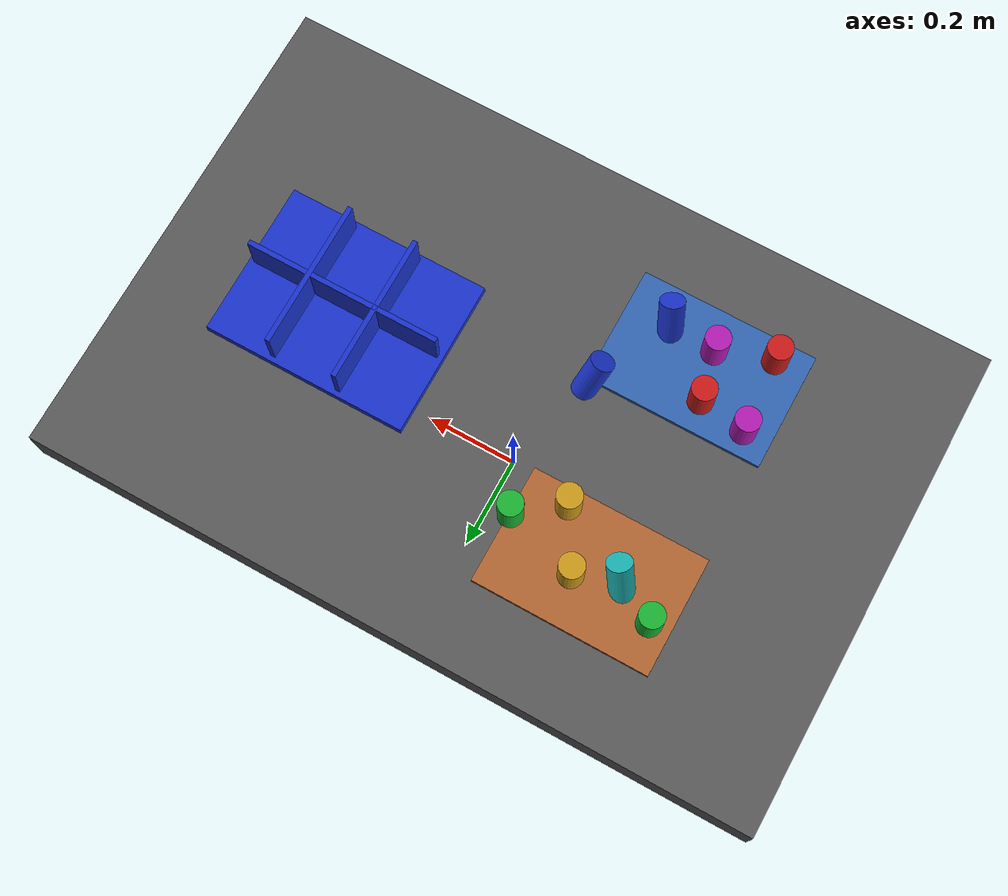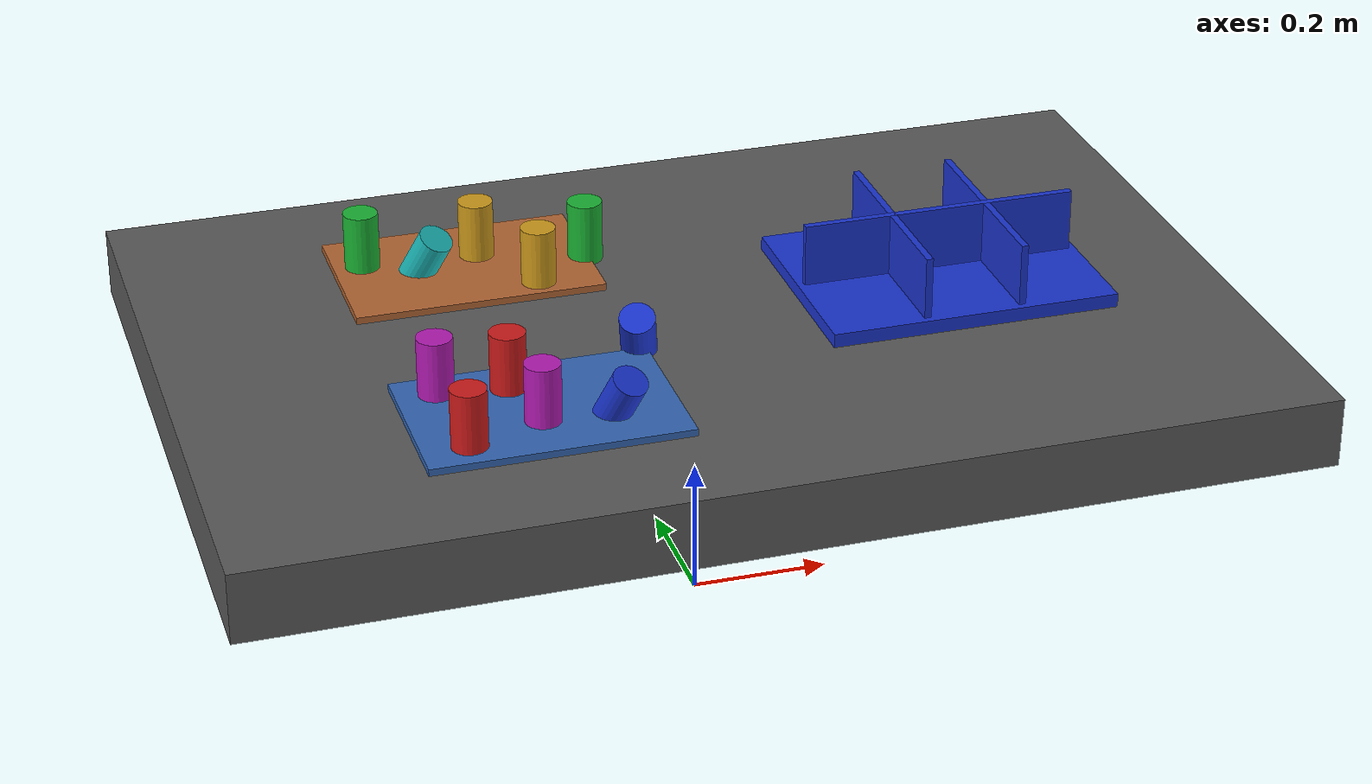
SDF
<?xml version="1.0" ?>
<sdf version="1.9">
  <!-- Standalone M1B scene.  The controller-backed Panda is spawned by the
       existing launch path; this file never alters the frozen M1A cube world. -->
  <world name="industrial_cylinder_v1">
    <physics name="bullet" type="bullet"><max_step_size>0.001</max_step_size><real_time_factor>1.0</real_time_factor></physics>
    <plugin name="gz::sim::systems::Physics" filename="gz-sim-physics-system"><engine><filename>gz-physics-bullet-featherstone-plugin</filename></engine></plugin>
    <plugin name="gz::sim::systems::UserCommands" filename="gz-sim-user-commands-system"/>
    <plugin name="gz::sim::systems::SceneBroadcaster" filename="gz-sim-scene-broadcaster-system"/>
    <plugin name="gz::sim::systems::Sensors" filename="gz-sim-sensors-system"><render_engine>ogre2</render_engine></plugin>
    <gravity>0 0 -9.81</gravity>
    <light type="directional" name="industrial_light"><pose>0 0 5 0 0 0</pose><direction>-0.3 0.2 -0.9</direction><diffuse>0.9 0.9 0.9 1</diffuse></light>
    <model name="industrial_work_table"><static>true</static><link name="link"><pose>0 0 0.4 0 0 0</pose><collision name="collision"><geometry><box><size>1.5 1.0 0.1</size></box></geometry></collision><visual name="visual"><geometry><box><size>1.5 1.0 0.1</size></box></geometry><material><diffuse>0.35 0.35 0.35 1</diffuse></material></visual></link></model>
    <model name="camera_fixture"><static>true</static><link name="camera_rgbd"><pose>-0.80 -0.80 1.40 0 0.77 0.93</pose><sensor name="front_rgbd" type="rgbd_camera"><always_on>1</always_on><update_rate>15</update_rate><topic>/xh/camera/rgbd</topic><camera><horizontal_fov>1.047</horizontal_fov><image><width>640</width><height>480</height><format>R8G8B8</format></image><clip><near>0.1</near><far>4.0</far></clip></camera></sensor></link></model>
    <model name="incoming_zone_a"><static>true</static><link name="link"><pose>-0.28 -0.22 0.455 0 0 0</pose><visual name="visual"><geometry><box><size>0.36 0.24 0.01</size></box></geometry><material><diffuse>0.2 0.4 0.7 1</diffuse></material></visual></link></model>
    <model name="incoming_zone_b"><static>true</static><link name="link"><pose>-0.28 0.22 0.455 0 0 0</pose><visual name="visual"><geometry><box><size>0.36 0.24 0.01</size></box></geometry><material><diffuse>0.7 0.4 0.2 1</diffuse></material></visual></link></model>
    <!-- M1B_RANDOM_PARTS_BEGIN -->
    <model name="cylinder_01"><pose>-0.3088 -0.1593 0.5000 0.0000 0.0000 0.6417</pose><link name="link"><inertial><mass>0.06</mass></inertial><collision name="collision"><geometry><cylinder><radius>0.025</radius><length>0.09</length></cylinder></geometry></collision><visual name="visual"><geometry><cylinder><radius>0.025</radius><length>0.09</length></cylinder></geometry><material><diffuse>0.800 0.100 0.100 1</diffuse><specular>0.15 0.15 0.15 1</specular></material></visual></link></model>
    <model name="cylinder_02"><pose>-0.1040 0.1992 0.5000 3.1416 0.0000 -0.4952</pose><link name="link"><inertial><mass>0.06</mass></inertial><collision name="collision"><geometry><cylinder><radius>0.025</radius><length>0.09</length></cylinder></geometry></collision><visual name="visual"><geometry><cylinder><radius>0.025</radius><length>0.09</length></cylinder></geometry><material><diffuse>0.100 0.700 0.200 1</diffuse><specular>0.15 0.15 0.15 1</specular></material></visual></link></model>
    <model name="cylinder_03"><pose>-0.1880 -0.2712 0.4800 0.4500 -0.3000 1.0348</pose><link name="link"><inertial><mass>0.06</mass></inertial><collision name="collision"><geometry><cylinder><radius>0.025</radius><length>0.09</length></cylinder></geometry></collision><visual name="visual"><geometry><cylinder><radius>0.025</radius><length>0.09</length></cylinder></geometry><material><diffuse>0.100 0.200 0.800 1</diffuse><specular>0.15 0.15 0.15 1</specular></material></visual></link></model>
    <model name="cylinder_04"><pose>-0.2531 0.2457 0.5000 0.0000 0.0000 2.1150</pose><link name="link"><inertial><mass>0.06</mass></inertial><collision name="collision"><geometry><cylinder><radius>0.025</radius><length>0.09</length></cylinder></geometry></collision><visual name="visual"><geometry><cylinder><radius>0.025</radius><length>0.09</length></cylinder></geometry><material><diffuse>0.800 0.600 0.100 1</diffuse><specular>0.15 0.15 0.15 1</specular></material></visual></link></model>
    <model name="cylinder_05"><pose>-0.4043 -0.1454 0.5000 3.1416 0.0000 1.7565</pose><link name="link"><inertial><mass>0.06</mass></inertial><collision name="collision"><geometry><cylinder><radius>0.025</radius><length>0.09</length></cylinder></geometry></collision><visual name="visual"><geometry><cylinder><radius>0.025</radius><length>0.09</length></cylinder></geometry><material><diffuse>0.700 0.100 0.700 1</diffuse><specular>0.15 0.15 0.15 1</specular></material></visual></link></model>
    <model name="cylinder_06"><pose>-0.3370 0.2122 0.4800 0.4500 -0.3000 1.2408</pose><link name="link"><inertial><mass>0.06</mass></inertial><collision name="collision"><geometry><cylinder><radius>0.025</radius><length>0.09</length></cylinder></geometry></collision><visual name="visual"><geometry><cylinder><radius>0.025</radius><length>0.09</length></cylinder></geometry><material><diffuse>0.100 0.700 0.700 1</diffuse><specular>0.15 0.15 0.15 1</specular></material></visual></link></model>
    <model name="cylinder_07"><pose>-0.3950 -0.2960 0.5000 0.0000 0.0000 1.9960</pose><link name="link"><inertial><mass>0.06</mass></inertial><collision name="collision"><geometry><cylinder><radius>0.025</radius><length>0.09</length></cylinder></geometry></collision><visual name="visual"><geometry><cylinder><radius>0.025</radius><length>0.09</length></cylinder></geometry><material><diffuse>0.800 0.100 0.100 1</diffuse><specular>0.15 0.15 0.15 1</specular></material></visual></link></model>
    <model name="cylinder_08"><pose>-0.4180 0.2557 0.5000 3.1416 0.0000 1.9078</pose><link name="link"><inertial><mass>0.06</mass></inertial><collision name="collision"><geometry><cylinder><radius>0.025</radius><length>0.09</length></cylinder></geometry></collision><visual name="visual"><geometry><cylinder><radius>0.025</radius><length>0.09</length></cylinder></geometry><material><diffuse>0.100 0.700 0.200 1</diffuse><specular>0.15 0.15 0.15 1</specular></material></visual></link></model>
    <model name="cylinder_09"><pose>-0.1121 -0.1019 0.4800 0.4500 -0.3000 0.2095</pose><link name="link"><inertial><mass>0.06</mass></inertial><collision name="collision"><geometry><cylinder><radius>0.025</radius><length>0.09</length></cylinder></geometry></collision><visual name="visual"><geometry><cylinder><radius>0.025</radius><length>0.09</length></cylinder></geometry><material><diffuse>0.100 0.200 0.800 1</diffuse><specular>0.15 0.15 0.15 1</specular></material></visual></link></model>
    <model name="cylinder_10"><pose>-0.1895 0.1357 0.5000 0.0000 0.0000 -1.1632</pose><link name="link"><inertial><mass>0.06</mass></inertial><collision name="collision"><geometry><cylinder><radius>0.025</radius><length>0.09</length></cylinder></geometry></collision><visual name="visual"><geometry><cylinder><radius>0.025</radius><length>0.09</length></cylinder></geometry><material><diffuse>0.800 0.600 0.100 1</diffuse><specular>0.15 0.15 0.15 1</specular></material></visual></link></model>
    <model name="cylinder_11"><pose>-0.2867 -0.2576 0.5000 3.1416 0.0000 1.6761</pose><link name="link"><inertial><mass>0.06</mass></inertial><collision name="collision"><geometry><cylinder><radius>0.025</radius><length>0.09</length></cylinder></geometry></collision><visual name="visual"><geometry><cylinder><radius>0.025</radius><length>0.09</length></cylinder></geometry><material><diffuse>0.700 0.100 0.700 1</diffuse><specular>0.15 0.15 0.15 1</specular></material></visual></link></model>
    <!-- M1B_RANDOM_PARTS_END -->
    <model name="blue_partition_bin"><static>true</static><pose>0.36 0 0.45 0 0 0</pose><link name="link"><collision name="floor"><pose>0 0 0.01 0 0 0</pose><geometry><box><size>0.42 0.32 0.02</size></box></geometry></collision><visual name="floor_visual"><pose>0 0 0.01 0 0 0</pose><geometry><box><size>0.42 0.32 0.02</size></box></geometry><material><diffuse>0.1 0.2 0.8 1</diffuse></material></visual><visual name="row_divider"><pose>0 0 0.06 0 0 0</pose><geometry><box><size>0.40 0.01 0.10</size></box></geometry><material><diffuse>0.1 0.2 0.8 1</diffuse></material></visual><visual name="col_divider_a"><pose>-0.07 0 0.06 0 0 0</pose><geometry><box><size>0.01 0.30 0.10</size></box></geometry><material><diffuse>0.1 0.2 0.8 1</diffuse></material></visual><visual name="col_divider_b"><pose>0.07 0 0.06 0 0 0</pose><geometry><box><size>0.01 0.30 0.10</size></box></geometry><material><diffuse>0.1 0.2 0.8 1</diffuse></material></visual></link></model>
    <!-- Reserved only: second table, bin transport corridor, stackable-bin
         collision volume, and second arm mounting namespace. -->
  </world>
</sdf>
